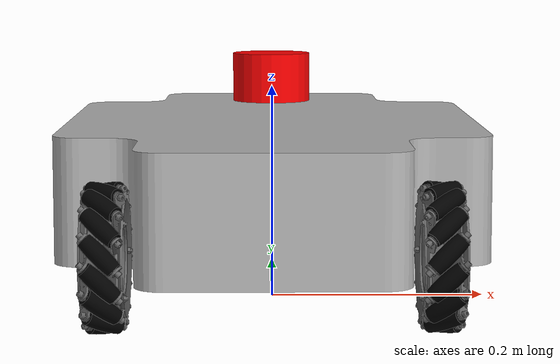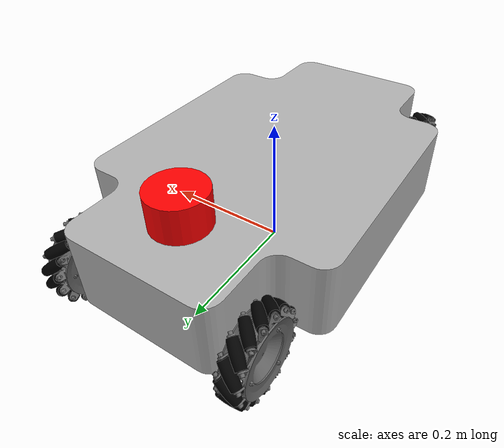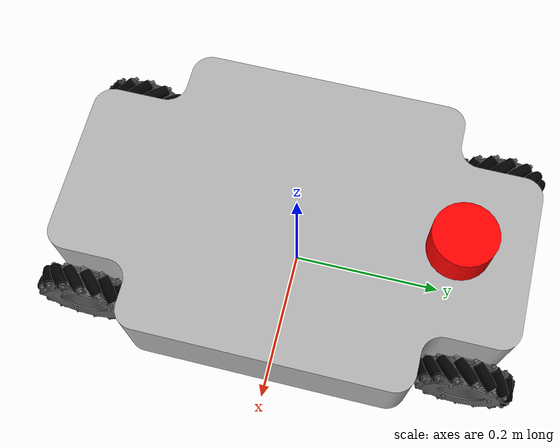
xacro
<?xml version="1.0"?>
<robot xmlns:xacro="http://www.ros.org/wiki/xacro" name="youbot">

    <xacro:include filename="$(find kuka_youbot)/xacro/variables.xacro"/>
    <xacro:include filename="$(find kuka_youbot)/xacro/base_macro.xacro"/>
    <xacro:include filename="$(find kuka_youbot)/xacro/mecanum_wheel.xacro"/>

    <xacro:youbot_base_with_wheels
        base_name="base"
        base_scale="${base_scale}"
        base_clearance="${base_clearance}"/>

        <link name="lidar">
            <visual>
                <origin xyz="0 0.2 0" rpy="0 0 0"/>
                <geometry>
                    <cylinder radius="0.04" length="0.08"/>
                </geometry>
                <material name="red">
                    <color rgba="1 0 0 1"/>
                </material>
            </visual>
        </link>

        <joint name="base_to_lidar" type="fixed">
            <origin xyz="0 0 ${base_box_height + 0.04}" rpy="0 0 0"/>
            <parent link="base"/>
            <child link="lidar"/>
        </joint>

    <xacro:wheel_with_rollers wheel_name="front_right" parent_link="base" side="1"  x="0.136"  y="0.245"  z="0.05" scale_factor="${scale_factor}"/>
    <xacro:wheel_with_rollers wheel_name="front_left"  parent_link="base"  side="-1" x="-0.136" y="0.245"  z="0.05" scale_factor="${scale_factor}"/>
    <xacro:wheel_with_rollers wheel_name="back_right"  parent_link="base"  side="1"  x="0.136"  y="-0.245" z="0.05" scale_factor="${scale_factor}"/>
    <xacro:wheel_with_rollers wheel_name="back_left"   parent_link="base"  side="-1" x="-0.136" y="-0.245" z="0.05" scale_factor="${scale_factor}"/>

</robot>

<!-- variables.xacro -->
<robot name="variables" xmlns:xacro="http://www.ros.org/wiki/xacro">

    <xacro:property name="PI" value="3.14"/>

    <!--                     ARM                 -->

    <xacro:property name="base_length" value="0.01"/>
    <xacro:property name="base_radius" value="0.086"/>
    <xacro:property name="shifted_base_to_arm" value="0.150"/>

    <xacro:property name="link1_length" value="0.033"/> <!-- meter -->
    <xacro:property name="link1_radius" value="0.025"/>
    <xacro:property name="joint1_max_limit" value="2.95"/> <!-- rad -->
    <xacro:property name="joint1_min_limit" value="-2.95"/>
    <xacro:property name="joint1_velocity" value="1.57"/> <!-- rad/s-->

    <xacro:property name="link2_length" value="0.147"/>
    <xacro:property name="link2_radius" value="0.025"/>
    <xacro:property name="joint2_max_limit" value="1.57"/>
    <xacro:property name="joint2_min_limit" value="-1.13"/>
    <xacro:property name="joint2_velocity" value="1.57"/>

    <xacro:property name="link3_length" value="0.155"/>
    <xacro:property name="link3_radius" value="0.025"/>
    <xacro:property name="joint3_max_limit" value="2.55"/>
    <xacro:property name="joint3_min_limit" value="-2.64"/>
    <xacro:property name="joint3_velocity" value="1.57"/>

    <xacro:property name="link4_length" value="0.135"/>
    <xacro:property name="link4_radius" value="0.025"/>
    <xacro:property name="joint4_max_limit" value="1.78"/>
    <xacro:property name="joint4_min_limit" value="-1.78"/>
    <xacro:property name="joint4_velocity" value="1.57"/>

    <xacro:property name="link5_length" value="0.2175"/>
    <xacro:property name="link5_radius" value="0.025"/>
    <xacro:property name="joint5_max_limit" value="2.91"/>
    <xacro:property name="joint5_min_limit" value="-2.91"/>
    <xacro:property name="joint5_velocity" value="1.57"/>

    <!--                     Gribber                -->

    <xacro:property name="gripper_base_width" value="0.05 "/>
    <xacro:property name="gripper_base_length" value="0.05 "/>
    <xacro:property name="gripper_base_height" value="0.015 "/>

    <!--                     Finger               -->

    <xacro:property name="Finger_length" value="0.01 "/>
    <xacro:property name="Finger_width" value="0.015"/>
    <xacro:property name="Finger_height" value="0.06 "/>
    <xacro:property name="Finger_max_limit" value="0.0125"/>
    <xacro:property name="Finger_min_limit" value="0.0"/>

    <!--                    BASE                 -->

    <xacro:property name="base_box_length" value="0.580"/>
    <xacro:property name="base_box_width" value="0.376"/>
    <xacro:property name="base_box_height" value="0.110"/>
    <xacro:property name="base_clearance" value="0.030"/>
    <xacro:property name="base_scale" value="0.001"/>
    <xacro:property name="scale_factor" value="0.6"/>
    <xacro:property name="base_speed" value="0.8"/>
    <xacro:property name="base_weight" value="20"/> <!-- kg -->
    <xacro:property name="base_payload" value="20"/> <!-- kg -->

    <xacro:property name="default_mass" value="1.0"/>
    <xacro:property name="default_ixx" value="0.01"/>
    <xacro:property name="default_iyy" value="0.01"/>
    <xacro:property name="default_izz" value="0.01"/>

</robot>

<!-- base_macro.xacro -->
<robot xmlns:xacro="http://www.ros.org/wiki/xacro">

  <xacro:macro name="youbot_base_with_wheels" params="base_name base_scale base_clearance">

    <material name="gray">
      <color rgba="0.7 0.7 0.7 1.0"/>
    </material>

    <!-- dummy root -->
    <link name="world_base"/>

    <joint name="world_to_base" type="fixed">
      <parent link="world_base"/>
      <child link="base"/>
      <origin xyz="0 0 ${base_clearance}"/>
    </joint>

    <link name="${base_name}">
      <visual>
        <geometry>
          <mesh filename="package://kuka_youbot/meshes/base_stl.stl" scale="${base_scale} ${base_scale} ${base_scale}"/>
        </geometry>
        <origin xyz="0 0 ${base_clearance}" rpy="0 -1.57 0"/>
        <material name="gray"/>
      </visual>

    </link>

  </xacro:macro>

</robot>

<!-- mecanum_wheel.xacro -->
<robot xmlns:xacro="http://www.ros.org/wiki/xacro">

    <xacro:macro name="wheel_with_rollers" params="wheel_name parent_link side x y z scale_factor">

      <link name="${wheel_name}_wheel_link">

        <visual>
          <geometry>
            <mesh filename="package://kuka_youbot/meshes/visual/wheel.dae"
                  scale="${scale_factor * side} ${scale_factor} ${scale_factor}" />
          </geometry>
        </visual>

        <xacro:roller_visuals name="${wheel_name}" side="${side}" num="15" scale_factor="${scale_factor}" />
      </link>

      <joint name="${wheel_name}_rotation_joint" type="continuous">
        <origin xyz="${x} ${y} ${z}" rpy="0 0 0" />
        <parent link="${parent_link }"/>
        <child link="${wheel_name}_wheel_link"/>
        <axis xyz="1 0 0"/>
      </joint>

    </xacro:macro>

    <!-- Recursive macro to add roller visuals with 45-degree tilt -->
  <xacro:macro name="roller_visuals" params="name side num scale_factor">
    <xacro:if value="${num > 0}">

      <!-- theta for each roller -->
      <xacro:property name="th" value="${radians(360.0 / 15.0 * (num - 1))}"/>

      <xacro:if value="${side == 1}">
        <visual>
          <origin
            xyz="0 ${0.0895 * scale_factor * cos(th)} ${0.0895 * scale_factor * sin(th)}"
            rpy="${atan(-tan(th)*sqrt(2.0))} ${asin(cos(th)/sqrt(2.0))} ${atan(sin(th))}" />
          <geometry>
            <mesh filename="package://kuka_youbot/meshes/visual/roller.dae"
                  scale="${scale_factor} ${scale_factor} ${scale_factor}"/>
          </geometry>
        </visual>
      </xacro:if>

      <xacro:if value="${side == -1}">
        <visual>
          <origin
            xyz="0 ${0.0895 * scale_factor * cos(th)} ${0.0895 * scale_factor * sin(th)}"
            rpy="${atan(-tan(th)*sqrt(2.0))} ${asin(-cos(th)/sqrt(2.0))} ${atan(-sin(th))}" />
          <geometry>
            <mesh filename="package://kuka_youbot/meshes/visual/roller.dae"
                  scale="${scale_factor} ${scale_factor} ${scale_factor}"/>
          </geometry>
        </visual>
      </xacro:if>

      <xacro:roller_visuals name="${name}" side="${side}" num="${num - 1}" scale_factor="${scale_factor}" />
    </xacro:if>
  </xacro:macro>

</robot>
